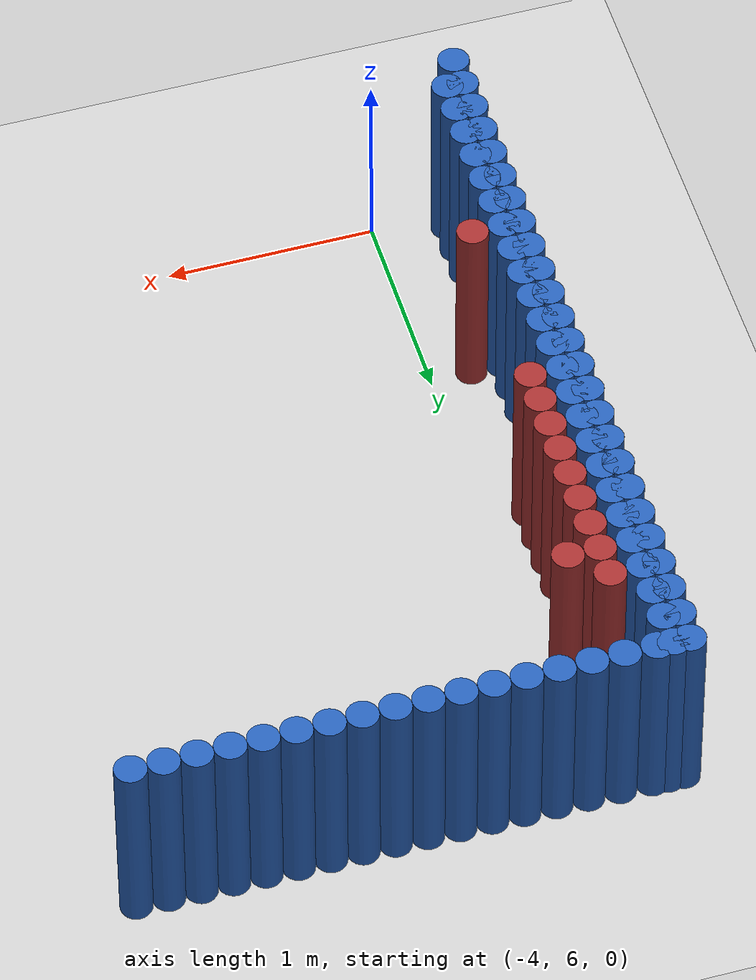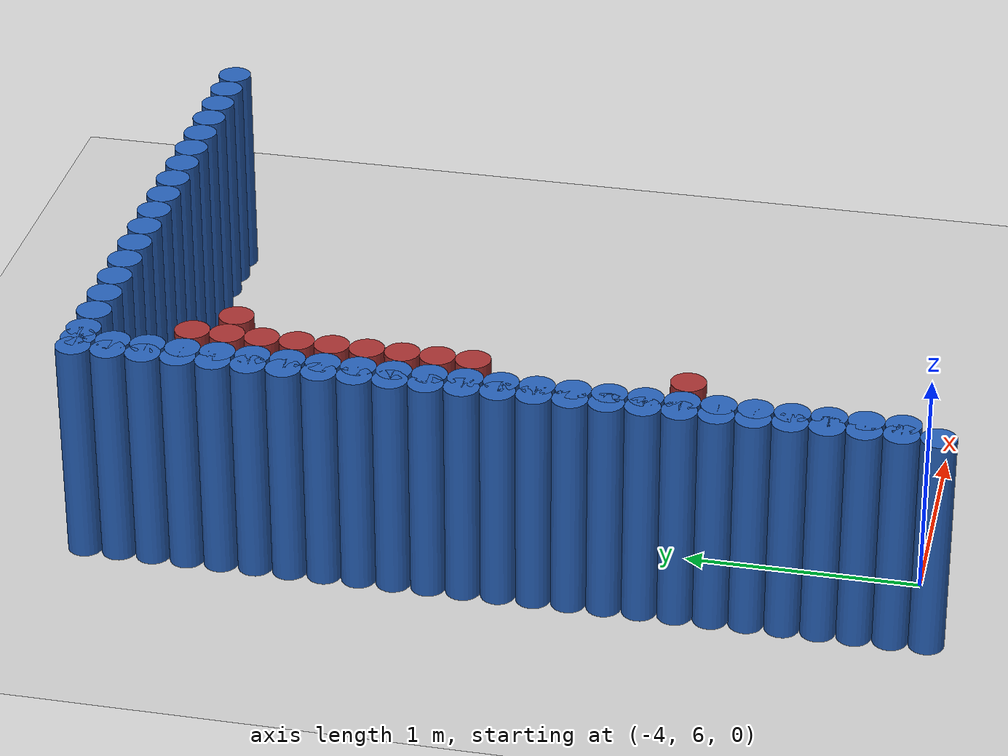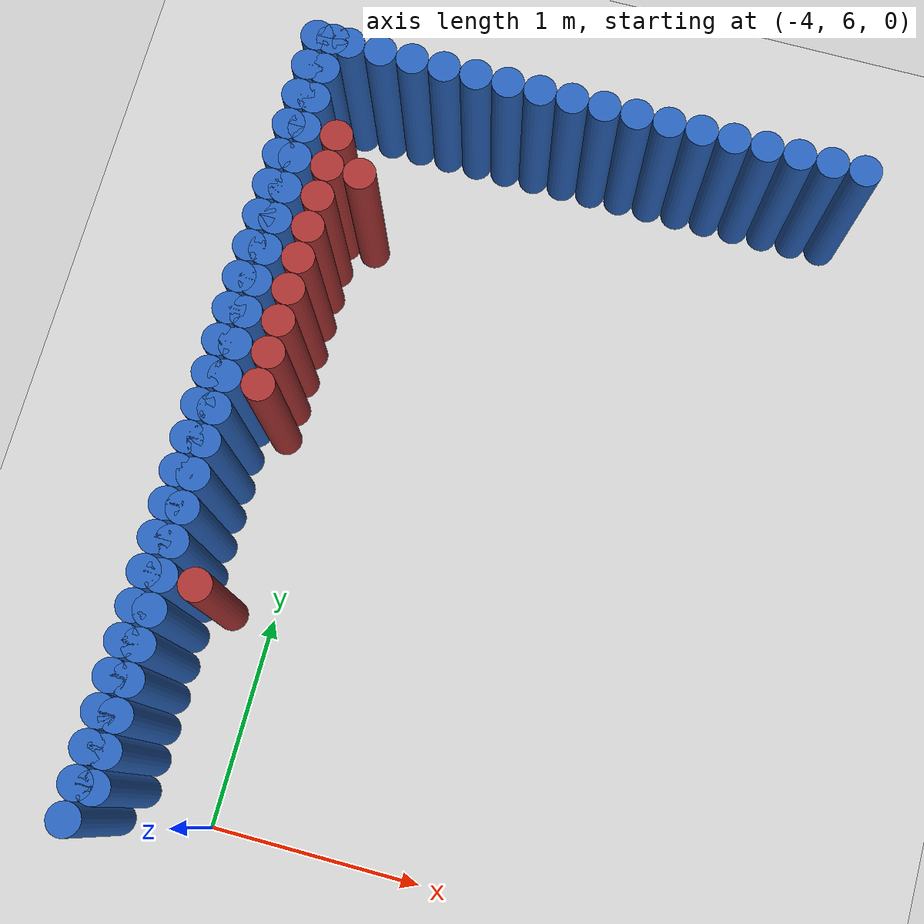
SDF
<sdf version="1.6">
 <world name="barn_world">
  <model name="ground_plane">
   <static>1</static>
   <link name="link">
    <collision name="collision">
     <geometry><plane><normal>0 0 1</normal><size>100 100</size></plane></geometry>
    </collision>
    <visual name="visual">
     <geometry><plane><normal>0 0 1</normal><size>100 100</size></plane></geometry>
     <material>
      <script><uri>file://media/materials/scripts/gazebo.material</uri><name>Gazebo/Grey</name></script>
     </material>
    </visual>
   </link>
  </model>
  <model name="unit_cylinder_132">
   <static>1</static>
   <pose>-4.3500 6.0750 0.5 0 0 0</pose>
   <link name="link">
    <collision name="collision">
     <geometry><cylinder><radius>0.075</radius><length>1</length></cylinder></geometry>
    </collision>
    <visual name="visual">
     <geometry><cylinder><radius>0.075</radius><length>1</length></cylinder></geometry>
     <material><ambient>0.152 0.379 0.72 1</ambient><diffuse>0.152 0.379 0.72 1</diffuse></material>
    </visual>
   </link>
  </model>
  <model name="unit_cylinder_133">
   <static>1</static>
   <pose>-4.3500 6.2250 0.5 0 0 0</pose>
   <link name="link">
    <collision name="collision">
     <geometry><cylinder><radius>0.075</radius><length>1</length></cylinder></geometry>
    </collision>
    <visual name="visual">
     <geometry><cylinder><radius>0.075</radius><length>1</length></cylinder></geometry>
     <material><ambient>0.152 0.379 0.72 1</ambient><diffuse>0.152 0.379 0.72 1</diffuse></material>
    </visual>
   </link>
  </model>
  <model name="unit_cylinder_134">
   <static>1</static>
   <pose>-4.3500 6.3750 0.5 0 0 0</pose>
   <link name="link">
    <collision name="collision">
     <geometry><cylinder><radius>0.075</radius><length>1</length></cylinder></geometry>
    </collision>
    <visual name="visual">
     <geometry><cylinder><radius>0.075</radius><length>1</length></cylinder></geometry>
     <material><ambient>0.152 0.379 0.72 1</ambient><diffuse>0.152 0.379 0.72 1</diffuse></material>
    </visual>
   </link>
  </model>
  <model name="unit_cylinder_135">
   <static>1</static>
   <pose>-4.3500 6.5250 0.5 0 0 0</pose>
   <link name="link">
    <collision name="collision">
     <geometry><cylinder><radius>0.075</radius><length>1</length></cylinder></geometry>
    </collision>
    <visual name="visual">
     <geometry><cylinder><radius>0.075</radius><length>1</length></cylinder></geometry>
     <material><ambient>0.152 0.379 0.72 1</ambient><diffuse>0.152 0.379 0.72 1</diffuse></material>
    </visual>
   </link>
  </model>
  <model name="unit_cylinder_136">
   <static>1</static>
   <pose>-4.3500 6.6750 0.5 0 0 0</pose>
   <link name="link">
    <collision name="collision">
     <geometry><cylinder><radius>0.075</radius><length>1</length></cylinder></geometry>
    </collision>
    <visual name="visual">
     <geometry><cylinder><radius>0.075</radius><length>1</length></cylinder></geometry>
     <material><ambient>0.152 0.379 0.72 1</ambient><diffuse>0.152 0.379 0.72 1</diffuse></material>
    </visual>
   </link>
  </model>
  <model name="unit_cylinder_137">
   <static>1</static>
   <pose>-4.3500 6.8250 0.5 0 0 0</pose>
   <link name="link">
    <collision name="collision">
     <geometry><cylinder><radius>0.075</radius><length>1</length></cylinder></geometry>
    </collision>
    <visual name="visual">
     <geometry><cylinder><radius>0.075</radius><length>1</length></cylinder></geometry>
     <material><ambient>0.152 0.379 0.72 1</ambient><diffuse>0.152 0.379 0.72 1</diffuse></material>
    </visual>
   </link>
  </model>
  <model name="unit_cylinder_138">
   <static>1</static>
   <pose>-4.3500 6.9750 0.5 0 0 0</pose>
   <link name="link">
    <collision name="collision">
     <geometry><cylinder><radius>0.075</radius><length>1</length></cylinder></geometry>
    </collision>
    <visual name="visual">
     <geometry><cylinder><radius>0.075</radius><length>1</length></cylinder></geometry>
     <material><ambient>0.152 0.379 0.72 1</ambient><diffuse>0.152 0.379 0.72 1</diffuse></material>
    </visual>
   </link>
  </model>
  <model name="unit_cylinder_139">
   <static>1</static>
   <pose>-4.3500 7.1250 0.5 0 0 0</pose>
   <link name="link">
    <collision name="collision">
     <geometry><cylinder><radius>0.075</radius><length>1</length></cylinder></geometry>
    </collision>
    <visual name="visual">
     <geometry><cylinder><radius>0.075</radius><length>1</length></cylinder></geometry>
     <material><ambient>0.152 0.379 0.72 1</ambient><diffuse>0.152 0.379 0.72 1</diffuse></material>
    </visual>
   </link>
  </model>
  <model name="unit_cylinder_140">
   <static>1</static>
   <pose>-4.3500 7.2750 0.5 0 0 0</pose>
   <link name="link">
    <collision name="collision">
     <geometry><cylinder><radius>0.075</radius><length>1</length></cylinder></geometry>
    </collision>
    <visual name="visual">
     <geometry><cylinder><radius>0.075</radius><length>1</length></cylinder></geometry>
     <material><ambient>0.152 0.379 0.72 1</ambient><diffuse>0.152 0.379 0.72 1</diffuse></material>
    </visual>
   </link>
  </model>
  <model name="unit_cylinder_141">
   <static>1</static>
   <pose>-4.3500 7.4250 0.5 0 0 0</pose>
   <link name="link">
    <collision name="collision">
     <geometry><cylinder><radius>0.075</radius><length>1</length></cylinder></geometry>
    </collision>
    <visual name="visual">
     <geometry><cylinder><radius>0.075</radius><length>1</length></cylinder></geometry>
     <material><ambient>0.152 0.379 0.72 1</ambient><diffuse>0.152 0.379 0.72 1</diffuse></material>
    </visual>
   </link>
  </model>
  <model name="unit_cylinder_142">
   <static>1</static>
   <pose>-4.3500 7.5750 0.5 0 0 0</pose>
   <link name="link">
    <collision name="collision">
     <geometry><cylinder><radius>0.075</radius><length>1</length></cylinder></geometry>
    </collision>
    <visual name="visual">
     <geometry><cylinder><radius>0.075</radius><length>1</length></cylinder></geometry>
     <material><ambient>0.152 0.379 0.72 1</ambient><diffuse>0.152 0.379 0.72 1</diffuse></material>
    </visual>
   </link>
  </model>
  <model name="unit_cylinder_143">
   <static>1</static>
   <pose>-4.3500 7.7250 0.5 0 0 0</pose>
   <link name="link">
    <collision name="collision">
     <geometry><cylinder><radius>0.075</radius><length>1</length></cylinder></geometry>
    </collision>
    <visual name="visual">
     <geometry><cylinder><radius>0.075</radius><length>1</length></cylinder></geometry>
     <material><ambient>0.152 0.379 0.72 1</ambient><diffuse>0.152 0.379 0.72 1</diffuse></material>
    </visual>
   </link>
  </model>
  <model name="unit_cylinder_144">
   <static>1</static>
   <pose>-4.3500 7.8750 0.5 0 0 0</pose>
   <link name="link">
    <collision name="collision">
     <geometry><cylinder><radius>0.075</radius><length>1</length></cylinder></geometry>
    </collision>
    <visual name="visual">
     <geometry><cylinder><radius>0.075</radius><length>1</length></cylinder></geometry>
     <material><ambient>0.152 0.379 0.72 1</ambient><diffuse>0.152 0.379 0.72 1</diffuse></material>
    </visual>
   </link>
  </model>
  <model name="unit_cylinder_145">
   <static>1</static>
   <pose>-4.3500 8.0250 0.5 0 0 0</pose>
   <link name="link">
    <collision name="collision">
     <geometry><cylinder><radius>0.075</radius><length>1</length></cylinder></geometry>
    </collision>
    <visual name="visual">
     <geometry><cylinder><radius>0.075</radius><length>1</length></cylinder></geometry>
     <material><ambient>0.152 0.379 0.72 1</ambient><diffuse>0.152 0.379 0.72 1</diffuse></material>
    </visual>
   </link>
  </model>
  <model name="unit_cylinder_146">
   <static>1</static>
   <pose>-4.3500 8.1750 0.5 0 0 0</pose>
   <link name="link">
    <collision name="collision">
     <geometry><cylinder><radius>0.075</radius><length>1</length></cylinder></geometry>
    </collision>
    <visual name="visual">
     <geometry><cylinder><radius>0.075</radius><length>1</length></cylinder></geometry>
     <material><ambient>0.152 0.379 0.72 1</ambient><diffuse>0.152 0.379 0.72 1</diffuse></material>
    </visual>
   </link>
  </model>
  <model name="unit_cylinder_147">
   <static>1</static>
   <pose>-4.3500 8.3250 0.5 0 0 0</pose>
   <link name="link">
    <collision name="collision">
     <geometry><cylinder><radius>0.075</radius><length>1</length></cylinder></geometry>
    </collision>
    <visual name="visual">
     <geometry><cylinder><radius>0.075</radius><length>1</length></cylinder></geometry>
     <material><ambient>0.152 0.379 0.72 1</ambient><diffuse>0.152 0.379 0.72 1</diffuse></material>
    </visual>
   </link>
  </model>
  <model name="unit_cylinder_148">
   <static>1</static>
   <pose>-4.3500 8.4750 0.5 0 0 0</pose>
   <link name="link">
    <collision name="collision">
     <geometry><cylinder><radius>0.075</radius><length>1</length></cylinder></geometry>
    </collision>
    <visual name="visual">
     <geometry><cylinder><radius>0.075</radius><length>1</length></cylinder></geometry>
     <material><ambient>0.152 0.379 0.72 1</ambient><diffuse>0.152 0.379 0.72 1</diffuse></material>
    </visual>
   </link>
  </model>
  <model name="unit_cylinder_149">
   <static>1</static>
   <pose>-4.3500 8.6250 0.5 0 0 0</pose>
   <link name="link">
    <collision name="collision">
     <geometry><cylinder><radius>0.075</radius><length>1</length></cylinder></geometry>
    </collision>
    <visual name="visual">
     <geometry><cylinder><radius>0.075</radius><length>1</length></cylinder></geometry>
     <material><ambient>0.152 0.379 0.72 1</ambient><diffuse>0.152 0.379 0.72 1</diffuse></material>
    </visual>
   </link>
  </model>
  <model name="unit_cylinder_150">
   <static>1</static>
   <pose>-4.3500 8.7750 0.5 0 0 0</pose>
   <link name="link">
    <collision name="collision">
     <geometry><cylinder><radius>0.075</radius><length>1</length></cylinder></geometry>
    </collision>
    <visual name="visual">
     <geometry><cylinder><radius>0.075</radius><length>1</length></cylinder></geometry>
     <material><ambient>0.152 0.379 0.72 1</ambient><diffuse>0.152 0.379 0.72 1</diffuse></material>
    </visual>
   </link>
  </model>
  <model name="unit_cylinder_151">
   <static>1</static>
   <pose>-4.3500 8.9250 0.5 0 0 0</pose>
   <link name="link">
    <collision name="collision">
     <geometry><cylinder><radius>0.075</radius><length>1</length></cylinder></geometry>
    </collision>
    <visual name="visual">
     <geometry><cylinder><radius>0.075</radius><length>1</length></cylinder></geometry>
     <material><ambient>0.152 0.379 0.72 1</ambient><diffuse>0.152 0.379 0.72 1</diffuse></material>
    </visual>
   </link>
  </model>
  <model name="unit_cylinder_152">
   <static>1</static>
   <pose>-4.3500 9.0750 0.5 0 0 0</pose>
   <link name="link">
    <collision name="collision">
     <geometry><cylinder><radius>0.075</radius><length>1</length></cylinder></geometry>
    </collision>
    <visual name="visual">
     <geometry><cylinder><radius>0.075</radius><length>1</length></cylinder></geometry>
     <material><ambient>0.152 0.379 0.72 1</ambient><diffuse>0.152 0.379 0.72 1</diffuse></material>
    </visual>
   </link>
  </model>
  <model name="unit_cylinder_153">
   <static>1</static>
   <pose>-4.3500 9.2250 0.5 0 0 0</pose>
   <link name="link">
    <collision name="collision">
     <geometry><cylinder><radius>0.075</radius><length>1</length></cylinder></geometry>
    </collision>
    <visual name="visual">
     <geometry><cylinder><radius>0.075</radius><length>1</length></cylinder></geometry>
     <material><ambient>0.152 0.379 0.72 1</ambient><diffuse>0.152 0.379 0.72 1</diffuse></material>
    </visual>
   </link>
  </model>
  <model name="unit_cylinder_154">
   <static>1</static>
   <pose>-4.3500 9.3750 0.5 0 0 0</pose>
   <link name="link">
    <collision name="collision">
     <geometry><cylinder><radius>0.075</radius><length>1</length></cylinder></geometry>
    </collision>
    <visual name="visual">
     <geometry><cylinder><radius>0.075</radius><length>1</length></cylinder></geometry>
     <material><ambient>0.152 0.379 0.72 1</ambient><diffuse>0.152 0.379 0.72 1</diffuse></material>
    </visual>
   </link>
  </model>
  <model name="unit_cylinder_155">
   <static>1</static>
   <pose>-4.3500 9.5250 0.5 0 0 0</pose>
   <link name="link">
    <collision name="collision">
     <geometry><cylinder><radius>0.075</radius><length>1</length></cylinder></geometry>
    </collision>
    <visual name="visual">
     <geometry><cylinder><radius>0.075</radius><length>1</length></cylinder></geometry>
     <material><ambient>0.152 0.379 0.72 1</ambient><diffuse>0.152 0.379 0.72 1</diffuse></material>
    </visual>
   </link>
  </model>
  <model name="unit_cylinder_157">
   <static>1</static>
   <pose>-4.2000 6.9750 0.5 0 0 0</pose>
   <link name="link">
    <collision name="collision">
     <geometry><cylinder><radius>0.075</radius><length>1</length></cylinder></geometry>
    </collision>
    <visual name="visual">
     <geometry><cylinder><radius>0.075</radius><length>1</length></cylinder></geometry>
     <material><ambient>0.648 0.192 0.192 1</ambient><diffuse>0.648 0.192 0.192 1</diffuse></material>
    </visual>
   </link>
  </model>
  <model name="unit_cylinder_158">
   <static>1</static>
   <pose>-4.2000 7.8750 0.5 0 0 0</pose>
   <link name="link">
    <collision name="collision">
     <geometry><cylinder><radius>0.075</radius><length>1</length></cylinder></geometry>
    </collision>
    <visual name="visual">
     <geometry><cylinder><radius>0.075</radius><length>1</length></cylinder></geometry>
     <material><ambient>0.648 0.192 0.192 1</ambient><diffuse>0.648 0.192 0.192 1</diffuse></material>
    </visual>
   </link>
  </model>
  <model name="unit_cylinder_159">
   <static>1</static>
   <pose>-4.2000 8.0250 0.5 0 0 0</pose>
   <link name="link">
    <collision name="collision">
     <geometry><cylinder><radius>0.075</radius><length>1</length></cylinder></geometry>
    </collision>
    <visual name="visual">
     <geometry><cylinder><radius>0.075</radius><length>1</length></cylinder></geometry>
     <material><ambient>0.648 0.192 0.192 1</ambient><diffuse>0.648 0.192 0.192 1</diffuse></material>
    </visual>
   </link>
  </model>
  <model name="unit_cylinder_160">
   <static>1</static>
   <pose>-4.2000 8.1750 0.5 0 0 0</pose>
   <link name="link">
    <collision name="collision">
     <geometry><cylinder><radius>0.075</radius><length>1</length></cylinder></geometry>
    </collision>
    <visual name="visual">
     <geometry><cylinder><radius>0.075</radius><length>1</length></cylinder></geometry>
     <material><ambient>0.648 0.192 0.192 1</ambient><diffuse>0.648 0.192 0.192 1</diffuse></material>
    </visual>
   </link>
  </model>
  <model name="unit_cylinder_161">
   <static>1</static>
   <pose>-4.2000 8.3250 0.5 0 0 0</pose>
   <link name="link">
    <collision name="collision">
     <geometry><cylinder><radius>0.075</radius><length>1</length></cylinder></geometry>
    </collision>
    <visual name="visual">
     <geometry><cylinder><radius>0.075</radius><length>1</length></cylinder></geometry>
     <material><ambient>0.648 0.192 0.192 1</ambient><diffuse>0.648 0.192 0.192 1</diffuse></material>
    </visual>
   </link>
  </model>
  <model name="unit_cylinder_162">
   <static>1</static>
   <pose>-4.2000 8.4750 0.5 0 0 0</pose>
   <link name="link">
    <collision name="collision">
     <geometry><cylinder><radius>0.075</radius><length>1</length></cylinder></geometry>
    </collision>
    <visual name="visual">
     <geometry><cylinder><radius>0.075</radius><length>1</length></cylinder></geometry>
     <material><ambient>0.648 0.192 0.192 1</ambient><diffuse>0.648 0.192 0.192 1</diffuse></material>
    </visual>
   </link>
  </model>
  <model name="unit_cylinder_163">
   <static>1</static>
   <pose>-4.2000 8.6250 0.5 0 0 0</pose>
   <link name="link">
    <collision name="collision">
     <geometry><cylinder><radius>0.075</radius><length>1</length></cylinder></geometry>
    </collision>
    <visual name="visual">
     <geometry><cylinder><radius>0.075</radius><length>1</length></cylinder></geometry>
     <material><ambient>0.648 0.192 0.192 1</ambient><diffuse>0.648 0.192 0.192 1</diffuse></material>
    </visual>
   </link>
  </model>
  <model name="unit_cylinder_164">
   <static>1</static>
   <pose>-4.2000 8.7750 0.5 0 0 0</pose>
   <link name="link">
    <collision name="collision">
     <geometry><cylinder><radius>0.075</radius><length>1</length></cylinder></geometry>
    </collision>
    <visual name="visual">
     <geometry><cylinder><radius>0.075</radius><length>1</length></cylinder></geometry>
     <material><ambient>0.648 0.192 0.192 1</ambient><diffuse>0.648 0.192 0.192 1</diffuse></material>
    </visual>
   </link>
  </model>
  <model name="unit_cylinder_165">
   <static>1</static>
   <pose>-4.2000 8.9250 0.5 0 0 0</pose>
   <link name="link">
    <collision name="collision">
     <geometry><cylinder><radius>0.075</radius><length>1</length></cylinder></geometry>
    </collision>
    <visual name="visual">
     <geometry><cylinder><radius>0.075</radius><length>1</length></cylinder></geometry>
     <material><ambient>0.648 0.192 0.192 1</ambient><diffuse>0.648 0.192 0.192 1</diffuse></material>
    </visual>
   </link>
  </model>
  <model name="unit_cylinder_166">
   <static>1</static>
   <pose>-4.2000 9.0750 0.5 0 0 0</pose>
   <link name="link">
    <collision name="collision">
     <geometry><cylinder><radius>0.075</radius><length>1</length></cylinder></geometry>
    </collision>
    <visual name="visual">
     <geometry><cylinder><radius>0.075</radius><length>1</length></cylinder></geometry>
     <material><ambient>0.648 0.192 0.192 1</ambient><diffuse>0.648 0.192 0.192 1</diffuse></material>
    </visual>
   </link>
  </model>
  <model name="unit_cylinder_167">
   <static>1</static>
   <pose>-4.0500 8.9250 0.5 0 0 0</pose>
   <link name="link">
    <collision name="collision">
     <geometry><cylinder><radius>0.075</radius><length>1</length></cylinder></geometry>
    </collision>
    <visual name="visual">
     <geometry><cylinder><radius>0.075</radius><length>1</length></cylinder></geometry>
     <material><ambient>0.648 0.192 0.192 1</ambient><diffuse>0.648 0.192 0.192 1</diffuse></material>
    </visual>
   </link>
  </model>
  <model name="unit_cylinder_230">
   <static>1</static>
   <pose>-1.8750 9.5250 0.5 0 0 0</pose>
   <link name="link">
    <collision name="collision">
     <geometry><cylinder><radius>0.075</radius><length>1</length></cylinder></geometry>
    </collision>
    <visual name="visual">
     <geometry><cylinder><radius>0.075</radius><length>1</length></cylinder></geometry>
     <material><ambient>0.152 0.379 0.72 1</ambient><diffuse>0.152 0.379 0.72 1</diffuse></material>
    </visual>
   </link>
  </model>
  <model name="unit_cylinder_231">
   <static>1</static>
   <pose>-2.0250 9.5250 0.5 0 0 0</pose>
   <link name="link">
    <collision name="collision">
     <geometry><cylinder><radius>0.075</radius><length>1</length></cylinder></geometry>
    </collision>
    <visual name="visual">
     <geometry><cylinder><radius>0.075</radius><length>1</length></cylinder></geometry>
     <material><ambient>0.152 0.379 0.72 1</ambient><diffuse>0.152 0.379 0.72 1</diffuse></material>
    </visual>
   </link>
  </model>
  <model name="unit_cylinder_232">
   <static>1</static>
   <pose>-2.1750 9.5250 0.5 0 0 0</pose>
   <link name="link">
    <collision name="collision">
     <geometry><cylinder><radius>0.075</radius><length>1</length></cylinder></geometry>
    </collision>
    <visual name="visual">
     <geometry><cylinder><radius>0.075</radius><length>1</length></cylinder></geometry>
     <material><ambient>0.152 0.379 0.72 1</ambient><diffuse>0.152 0.379 0.72 1</diffuse></material>
    </visual>
   </link>
  </model>
  <model name="unit_cylinder_233">
   <static>1</static>
   <pose>-2.3250 9.5250 0.5 0 0 0</pose>
   <link name="link">
    <collision name="collision">
     <geometry><cylinder><radius>0.075</radius><length>1</length></cylinder></geometry>
    </collision>
    <visual name="visual">
     <geometry><cylinder><radius>0.075</radius><length>1</length></cylinder></geometry>
     <material><ambient>0.152 0.379 0.72 1</ambient><diffuse>0.152 0.379 0.72 1</diffuse></material>
    </visual>
   </link>
  </model>
  <model name="unit_cylinder_234">
   <static>1</static>
   <pose>-2.4750 9.5250 0.5 0 0 0</pose>
   <link name="link">
    <collision name="collision">
     <geometry><cylinder><radius>0.075</radius><length>1</length></cylinder></geometry>
    </collision>
    <visual name="visual">
     <geometry><cylinder><radius>0.075</radius><length>1</length></cylinder></geometry>
     <material><ambient>0.152 0.379 0.72 1</ambient><diffuse>0.152 0.379 0.72 1</diffuse></material>
    </visual>
   </link>
  </model>
  <model name="unit_cylinder_235">
   <static>1</static>
   <pose>-2.6250 9.5250 0.5 0 0 0</pose>
   <link name="link">
    <collision name="collision">
     <geometry><cylinder><radius>0.075</radius><length>1</length></cylinder></geometry>
    </collision>
    <visual name="visual">
     <geometry><cylinder><radius>0.075</radius><length>1</length></cylinder></geometry>
     <material><ambient>0.152 0.379 0.72 1</ambient><diffuse>0.152 0.379 0.72 1</diffuse></material>
    </visual>
   </link>
  </model>
  <model name="unit_cylinder_236">
   <static>1</static>
   <pose>-2.7750 9.5250 0.5 0 0 0</pose>
   <link name="link">
    <collision name="collision">
     <geometry><cylinder><radius>0.075</radius><length>1</length></cylinder></geometry>
    </collision>
    <visual name="visual">
     <geometry><cylinder><radius>0.075</radius><length>1</length></cylinder></geometry>
     <material><ambient>0.152 0.379 0.72 1</ambient><diffuse>0.152 0.379 0.72 1</diffuse></material>
    </visual>
   </link>
  </model>
  <model name="unit_cylinder_237">
   <static>1</static>
   <pose>-2.9250 9.5250 0.5 0 0 0</pose>
   <link name="link">
    <collision name="collision">
     <geometry><cylinder><radius>0.075</radius><length>1</length></cylinder></geometry>
    </collision>
    <visual name="visual">
     <geometry><cylinder><radius>0.075</radius><length>1</length></cylinder></geometry>
     <material><ambient>0.152 0.379 0.72 1</ambient><diffuse>0.152 0.379 0.72 1</diffuse></material>
    </visual>
   </link>
  </model>
  <model name="unit_cylinder_238">
   <static>1</static>
   <pose>-3.0750 9.5250 0.5 0 0 0</pose>
   <link name="link">
    <collision name="collision">
     <geometry><cylinder><radius>0.075</radius><length>1</length></cylinder></geometry>
    </collision>
    <visual name="visual">
     <geometry><cylinder><radius>0.075</radius><length>1</length></cylinder></geometry>
     <material><ambient>0.152 0.379 0.72 1</ambient><diffuse>0.152 0.379 0.72 1</diffuse></material>
    </visual>
   </link>
  </model>
  <model name="unit_cylinder_239">
   <static>1</static>
   <pose>-3.2250 9.5250 0.5 0 0 0</pose>
   <link name="link">
    <collision name="collision">
     <geometry><cylinder><radius>0.075</radius><length>1</length></cylinder></geometry>
    </collision>
    <visual name="visual">
     <geometry><cylinder><radius>0.075</radius><length>1</length></cylinder></geometry>
     <material><ambient>0.152 0.379 0.72 1</ambient><diffuse>0.152 0.379 0.72 1</diffuse></material>
    </visual>
   </link>
  </model>
  <model name="unit_cylinder_240">
   <static>1</static>
   <pose>-3.3750 9.5250 0.5 0 0 0</pose>
   <link name="link">
    <collision name="collision">
     <geometry><cylinder><radius>0.075</radius><length>1</length></cylinder></geometry>
    </collision>
    <visual name="visual">
     <geometry><cylinder><radius>0.075</radius><length>1</length></cylinder></geometry>
     <material><ambient>0.152 0.379 0.72 1</ambient><diffuse>0.152 0.379 0.72 1</diffuse></material>
    </visual>
   </link>
  </model>
  <model name="unit_cylinder_241">
   <static>1</static>
   <pose>-3.5250 9.5250 0.5 0 0 0</pose>
   <link name="link">
    <collision name="collision">
     <geometry><cylinder><radius>0.075</radius><length>1</length></cylinder></geometry>
    </collision>
    <visual name="visual">
     <geometry><cylinder><radius>0.075</radius><length>1</length></cylinder></geometry>
     <material><ambient>0.152 0.379 0.72 1</ambient><diffuse>0.152 0.379 0.72 1</diffuse></material>
    </visual>
   </link>
  </model>
  <model name="unit_cylinder_242">
   <static>1</static>
   <pose>-3.6750 9.5250 0.5 0 0 0</pose>
   <link name="link">
    <collision name="collision">
     <geometry><cylinder><radius>0.075</radius><length>1</length></cylinder></geometry>
    </collision>
    <visual name="visual">
     <geometry><cylinder><radius>0.075</radius><length>1</length></cylinder></geometry>
     <material><ambient>0.152 0.379 0.72 1</ambient><diffuse>0.152 0.379 0.72 1</diffuse></material>
    </visual>
   </link>
  </model>
  <model name="unit_cylinder_243">
   <static>1</static>
   <pose>-3.8250 9.5250 0.5 0 0 0</pose>
   <link name="link">
    <collision name="collision">
     <geometry><cylinder><radius>0.075</radius><length>1</length></cylinder></geometry>
    </collision>
    <visual name="visual">
     <geometry><cylinder><radius>0.075</radius><length>1</length></cylinder></geometry>
     <material><ambient>0.152 0.379 0.72 1</ambient><diffuse>0.152 0.379 0.72 1</diffuse></material>
    </visual>
   </link>
  </model>
  <model name="unit_cylinder_244">
   <static>1</static>
   <pose>-3.9750 9.5250 0.5 0 0 0</pose>
   <link name="link">
    <collision name="collision">
     <geometry><cylinder><radius>0.075</radius><length>1</length></cylinder></geometry>
    </collision>
    <visual name="visual">
     <geometry><cylinder><radius>0.075</radius><length>1</length></cylinder></geometry>
     <material><ambient>0.152 0.379 0.72 1</ambient><diffuse>0.152 0.379 0.72 1</diffuse></material>
    </visual>
   </link>
  </model>
  <model name="unit_cylinder_245">
   <static>1</static>
   <pose>-4.1250 9.5250 0.5 0 0 0</pose>
   <link name="link">
    <collision name="collision">
     <geometry><cylinder><radius>0.075</radius><length>1</length></cylinder></geometry>
    </collision>
    <visual name="visual">
     <geometry><cylinder><radius>0.075</radius><length>1</length></cylinder></geometry>
     <material><ambient>0.152 0.379 0.72 1</ambient><diffuse>0.152 0.379 0.72 1</diffuse></material>
    </visual>
   </link>
  </model>
  <model name="unit_cylinder_246">
   <static>1</static>
   <pose>-4.2750 9.5250 0.5 0 0 0</pose>
   <link name="link">
    <collision name="collision">
     <geometry><cylinder><radius>0.075</radius><length>1</length></cylinder></geometry>
    </collision>
    <visual name="visual">
     <geometry><cylinder><radius>0.075</radius><length>1</length></cylinder></geometry>
     <material><ambient>0.152 0.379 0.72 1</ambient><diffuse>0.152 0.379 0.72 1</diffuse></material>
    </visual>
   </link>
  </model>
  <model name="unit_cylinder_247">
   <static>1</static>
   <pose>-4.4250 9.5250 0.5 0 0 0</pose>
   <link name="link">
    <collision name="collision">
     <geometry><cylinder><radius>0.075</radius><length>1</length></cylinder></geometry>
    </collision>
    <visual name="visual">
     <geometry><cylinder><radius>0.075</radius><length>1</length></cylinder></geometry>
     <material><ambient>0.152 0.379 0.72 1</ambient><diffuse>0.152 0.379 0.72 1</diffuse></material>
    </visual>
   </link>
  </model>
  <model name="unit_cylinder_259">
   <static>1</static>
   <pose>-4.4250 5.9250 0.5 0 0 0</pose>
   <link name="link">
    <collision name="collision">
     <geometry><cylinder><radius>0.075</radius><length>1</length></cylinder></geometry>
    </collision>
    <visual name="visual">
     <geometry><cylinder><radius>0.075</radius><length>1</length></cylinder></geometry>
     <material><ambient>0.152 0.379 0.72 1</ambient><diffuse>0.152 0.379 0.72 1</diffuse></material>
    </visual>
   </link>
  </model>
  <model name="unit_cylinder_261">
   <static>1</static>
   <pose>-4.4250 6.0750 0.5 0 0 0</pose>
   <link name="link">
    <collision name="collision">
     <geometry><cylinder><radius>0.075</radius><length>1</length></cylinder></geometry>
    </collision>
    <visual name="visual">
     <geometry><cylinder><radius>0.075</radius><length>1</length></cylinder></geometry>
     <material><ambient>0.152 0.379 0.72 1</ambient><diffuse>0.152 0.379 0.72 1</diffuse></material>
    </visual>
   </link>
  </model>
  <model name="unit_cylinder_263">
   <static>1</static>
   <pose>-4.4250 6.2250 0.5 0 0 0</pose>
   <link name="link">
    <collision name="collision">
     <geometry><cylinder><radius>0.075</radius><length>1</length></cylinder></geometry>
    </collision>
    <visual name="visual">
     <geometry><cylinder><radius>0.075</radius><length>1</length></cylinder></geometry>
     <material><ambient>0.152 0.379 0.72 1</ambient><diffuse>0.152 0.379 0.72 1</diffuse></material>
    </visual>
   </link>
  </model>
  <model name="unit_cylinder_265">
   <static>1</static>
   <pose>-4.4250 6.3750 0.5 0 0 0</pose>
   <link name="link">
    <collision name="collision">
     <geometry><cylinder><radius>0.075</radius><length>1</length></cylinder></geometry>
    </collision>
    <visual name="visual">
     <geometry><cylinder><radius>0.075</radius><length>1</length></cylinder></geometry>
     <material><ambient>0.152 0.379 0.72 1</ambient><diffuse>0.152 0.379 0.72 1</diffuse></material>
    </visual>
   </link>
  </model>
  <model name="unit_cylinder_267">
   <static>1</static>
   <pose>-4.4250 6.5250 0.5 0 0 0</pose>
   <link name="link">
    <collision name="collision">
     <geometry><cylinder><radius>0.075</radius><length>1</length></cylinder></geometry>
    </collision>
    <visual name="visual">
     <geometry><cylinder><radius>0.075</radius><length>1</length></cylinder></geometry>
     <material><ambient>0.152 0.379 0.72 1</ambient><diffuse>0.152 0.379 0.72 1</diffuse></material>
    </visual>
   </link>
  </model>
  <model name="unit_cylinder_269">
   <static>1</static>
   <pose>-4.4250 6.6750 0.5 0 0 0</pose>
   <link name="link">
    <collision name="collision">
     <geometry><cylinder><radius>0.075</radius><length>1</length></cylinder></geometry>
    </collision>
    <visual name="visual">
     <geometry><cylinder><radius>0.075</radius><length>1</length></cylinder></geometry>
     <material><ambient>0.152 0.379 0.72 1</ambient><diffuse>0.152 0.379 0.72 1</diffuse></material>
    </visual>
   </link>
  </model>
  <model name="unit_cylinder_271">
   <static>1</static>
   <pose>-4.4250 6.8250 0.5 0 0 0</pose>
   <link name="link">
    <collision name="collision">
     <geometry><cylinder><radius>0.075</radius><length>1</length></cylinder></geometry>
    </collision>
    <visual name="visual">
     <geometry><cylinder><radius>0.075</radius><length>1</length></cylinder></geometry>
     <material><ambient>0.152 0.379 0.72 1</ambient><diffuse>0.152 0.379 0.72 1</diffuse></material>
    </visual>
   </link>
  </model>
  <model name="unit_cylinder_273">
   <static>1</static>
   <pose>-4.4250 6.9750 0.5 0 0 0</pose>
   <link name="link">
    <collision name="collision">
     <geometry><cylinder><radius>0.075</radius><length>1</length></cylinder></geometry>
    </collision>
    <visual name="visual">
     <geometry><cylinder><radius>0.075</radius><length>1</length></cylinder></geometry>
     <material><ambient>0.152 0.379 0.72 1</ambient><diffuse>0.152 0.379 0.72 1</diffuse></material>
    </visual>
   </link>
  </model>
  <model name="unit_cylinder_275">
   <static>1</static>
   <pose>-4.4250 7.1250 0.5 0 0 0</pose>
   <link name="link">
    <collision name="collision">
     <geometry><cylinder><radius>0.075</radius><length>1</length></cylinder></geometry>
    </collision>
    <visual name="visual">
     <geometry><cylinder><radius>0.075</radius><length>1</length></cylinder></geometry>
     <material><ambient>0.152 0.379 0.72 1</ambient><diffuse>0.152 0.379 0.72 1</diffuse></material>
    </visual>
   </link>
  </model>
  <model name="unit_cylinder_277">
   <static>1</static>
   <pose>-4.4250 7.2750 0.5 0 0 0</pose>
   <link name="link">
    <collision name="collision">
     <geometry><cylinder><radius>0.075</radius><length>1</length></cylinder></geometry>
    </collision>
    <visual name="visual">
     <geometry><cylinder><radius>0.075</radius><length>1</length></cylinder></geometry>
     <material><ambient>0.152 0.379 0.72 1</ambient><diffuse>0.152 0.379 0.72 1</diffuse></material>
    </visual>
   </link>
  </model>
  <model name="unit_cylinder_279">
   <static>1</static>
   <pose>-4.4250 7.4250 0.5 0 0 0</pose>
   <link name="link">
    <collision name="collision">
     <geometry><cylinder><radius>0.075</radius><length>1</length></cylinder></geometry>
    </collision>
    <visual name="visual">
     <geometry><cylinder><radius>0.075</radius><length>1</length></cylinder></geometry>
     <material><ambient>0.152 0.379 0.72 1</ambient><diffuse>0.152 0.379 0.72 1</diffuse></material>
    </visual>
   </link>
  </model>
  <model name="unit_cylinder_281">
   <static>1</static>
   <pose>-4.4250 7.5750 0.5 0 0 0</pose>
   <link name="link">
    <collision name="collision">
     <geometry><cylinder><radius>0.075</radius><length>1</length></cylinder></geometry>
    </collision>
    <visual name="visual">
     <geometry><cylinder><radius>0.075</radius><length>1</length></cylinder></geometry>
     <material><ambient>0.152 0.379 0.72 1</ambient><diffuse>0.152 0.379 0.72 1</diffuse></material>
    </visual>
   </link>
  </model>
  <model name="unit_cylinder_283">
   <static>1</static>
   <pose>-4.4250 7.7250 0.5 0 0 0</pose>
   <link name="link">
    <collision name="collision">
     <geometry><cylinder><radius>0.075</radius><length>1</length></cylinder></geometry>
    </collision>
    <visual name="visual">
     <geometry><cylinder><radius>0.075</radius><length>1</length></cylinder></geometry>
     <material><ambient>0.152 0.379 0.72 1</ambient><diffuse>0.152 0.379 0.72 1</diffuse></material>
    </visual>
   </link>
  </model>
  <model name="unit_cylinder_285">
   <static>1</static>
   <pose>-4.4250 7.8750 0.5 0 0 0</pose>
   <link name="link">
    <collision name="collision">
     <geometry><cylinder><radius>0.075</radius><length>1</length></cylinder></geometry>
    </collision>
    <visual name="visual">
     <geometry><cylinder><radius>0.075</radius><length>1</length></cylinder></geometry>
     <material><ambient>0.152 0.379 0.72 1</ambient><diffuse>0.152 0.379 0.72 1</diffuse></material>
    </visual>
   </link>
  </model>
  <model name="unit_cylinder_287">
   <static>1</static>
   <pose>-4.4250 8.0250 0.5 0 0 0</pose>
   <link name="link">
    <collision name="collision">
     <geometry><cylinder><radius>0.075</radius><length>1</length></cylinder></geometry>
    </collision>
    <visual name="visual">
     <geometry><cylinder><radius>0.075</radius><length>1</length></cylinder></geometry>
     <material><ambient>0.152 0.379 0.72 1</ambient><diffuse>0.152 0.379 0.72 1</diffuse></material>
    </visual>
   </link>
  </model>
  <model name="unit_cylinder_289">
   <static>1</static>
   <pose>-4.4250 8.1750 0.5 0 0 0</pose>
   <link name="link">
    <collision name="collision">
     <geometry><cylinder><radius>0.075</radius><length>1</length></cylinder></geometry>
    </collision>
    <visual name="visual">
     <geometry><cylinder><radius>0.075</radius><length>1</length></cylinder></geometry>
     <material><ambient>0.152 0.379 0.72 1</ambient><diffuse>0.152 0.379 0.72 1</diffuse></material>
    </visual>
   </link>
  </model>
  <model name="unit_cylinder_291">
   <static>1</static>
   <pose>-4.4250 8.3250 0.5 0 0 0</pose>
   <link name="link">
    <collision name="collision">
     <geometry><cylinder><radius>0.075</radius><length>1</length></cylinder></geometry>
    </collision>
    <visual name="visual">
     <geometry><cylinder><radius>0.075</radius><length>1</length></cylinder></geometry>
     <material><ambient>0.152 0.379 0.72 1</ambient><diffuse>0.152 0.379 0.72 1</diffuse></material>
    </visual>
   </link>
  </model>
  <model name="unit_cylinder_293">
   <static>1</static>
   <pose>-4.4250 8.4750 0.5 0 0 0</pose>
   <link name="link">
    <collision name="collision">
     <geometry><cylinder><radius>0.075</radius><length>1</length></cylinder></geometry>
    </collision>
    <visual name="visual">
     <geometry><cylinder><radius>0.075</radius><length>1</length></cylinder></geometry>
     <material><ambient>0.152 0.379 0.72 1</ambient><diffuse>0.152 0.379 0.72 1</diffuse></material>
    </visual>
   </link>
  </model>
  <model name="unit_cylinder_295">
   <static>1</static>
   <pose>-4.4250 8.6250 0.5 0 0 0</pose>
   <link name="link">
    <collision name="collision">
     <geometry><cylinder><radius>0.075</radius><length>1</length></cylinder></geometry>
    </collision>
    <visual name="visual">
     <geometry><cylinder><radius>0.075</radius><length>1</length></cylinder></geometry>
     <material><ambient>0.152 0.379 0.72 1</ambient><diffuse>0.152 0.379 0.72 1</diffuse></material>
    </visual>
   </link>
  </model>
  <model name="unit_cylinder_297">
   <static>1</static>
   <pose>-4.4250 8.7750 0.5 0 0 0</pose>
   <link name="link">
    <collision name="collision">
     <geometry><cylinder><radius>0.075</radius><length>1</length></cylinder></geometry>
    </collision>
    <visual name="visual">
     <geometry><cylinder><radius>0.075</radius><length>1</length></cylinder></geometry>
     <material><ambient>0.152 0.379 0.72 1</ambient><diffuse>0.152 0.379 0.72 1</diffuse></material>
    </visual>
   </link>
  </model>
  <model name="unit_cylinder_299">
   <static>1</static>
   <pose>-4.4250 8.9250 0.5 0 0 0</pose>
   <link name="link">
    <collision name="collision">
     <geometry><cylinder><radius>0.075</radius><length>1</length></cylinder></geometry>
    </collision>
    <visual name="visual">
     <geometry><cylinder><radius>0.075</radius><length>1</length></cylinder></geometry>
     <material><ambient>0.152 0.379 0.72 1</ambient><diffuse>0.152 0.379 0.72 1</diffuse></material>
    </visual>
   </link>
  </model>
  <model name="unit_cylinder_301">
   <static>1</static>
   <pose>-4.4250 9.0750 0.5 0 0 0</pose>
   <link name="link">
    <collision name="collision">
     <geometry><cylinder><radius>0.075</radius><length>1</length></cylinder></geometry>
    </collision>
    <visual name="visual">
     <geometry><cylinder><radius>0.075</radius><length>1</length></cylinder></geometry>
     <material><ambient>0.152 0.379 0.72 1</ambient><diffuse>0.152 0.379 0.72 1</diffuse></material>
    </visual>
   </link>
  </model>
  <model name="unit_cylinder_303">
   <static>1</static>
   <pose>-4.4250 9.2250 0.5 0 0 0</pose>
   <link name="link">
    <collision name="collision">
     <geometry><cylinder><radius>0.075</radius><length>1</length></cylinder></geometry>
    </collision>
    <visual name="visual">
     <geometry><cylinder><radius>0.075</radius><length>1</length></cylinder></geometry>
     <material><ambient>0.152 0.379 0.72 1</ambient><diffuse>0.152 0.379 0.72 1</diffuse></material>
    </visual>
   </link>
  </model>
  <model name="unit_cylinder_305">
   <static>1</static>
   <pose>-4.4250 9.3750 0.5 0 0 0</pose>
   <link name="link">
    <collision name="collision">
     <geometry><cylinder><radius>0.075</radius><length>1</length></cylinder></geometry>
    </collision>
    <visual name="visual">
     <geometry><cylinder><radius>0.075</radius><length>1</length></cylinder></geometry>
     <material><ambient>0.152 0.379 0.72 1</ambient><diffuse>0.152 0.379 0.72 1</diffuse></material>
    </visual>
   </link>
  </model>
 </world>
</sdf>
